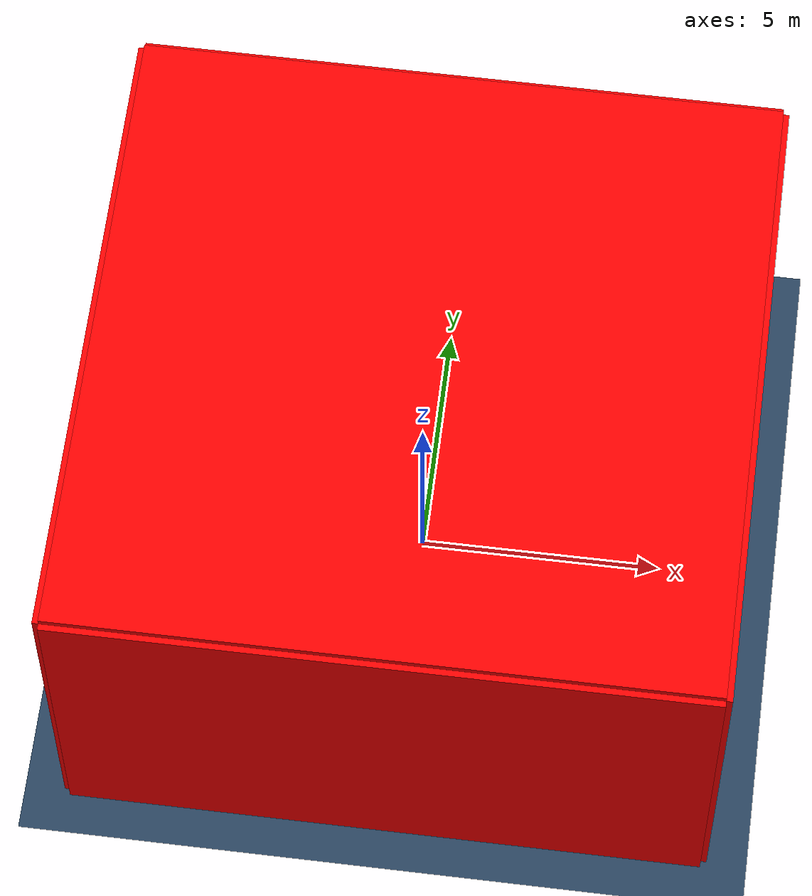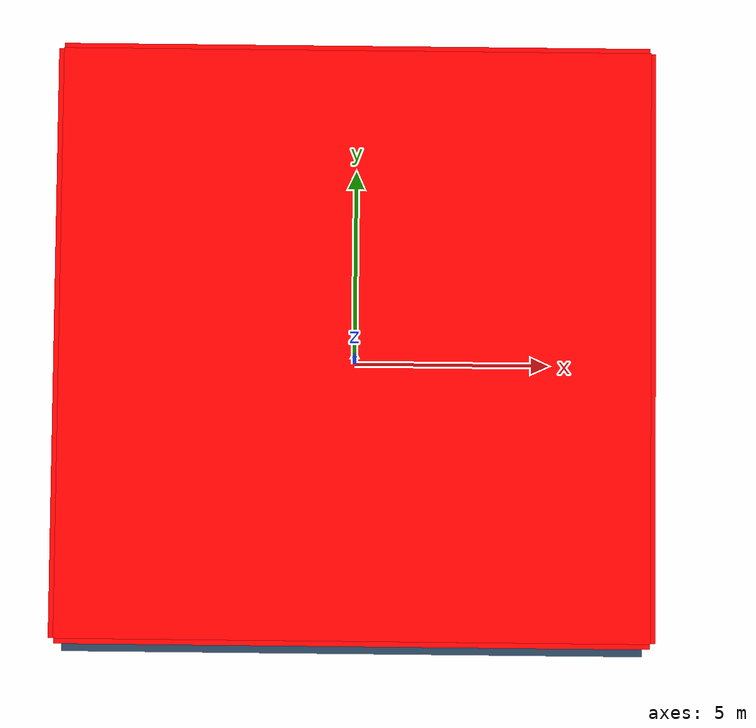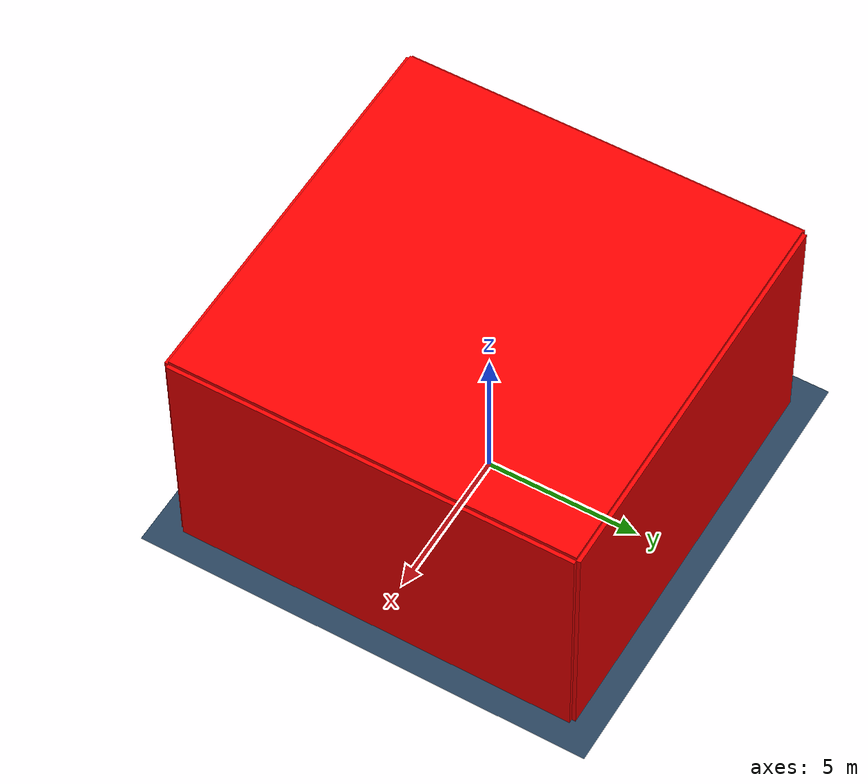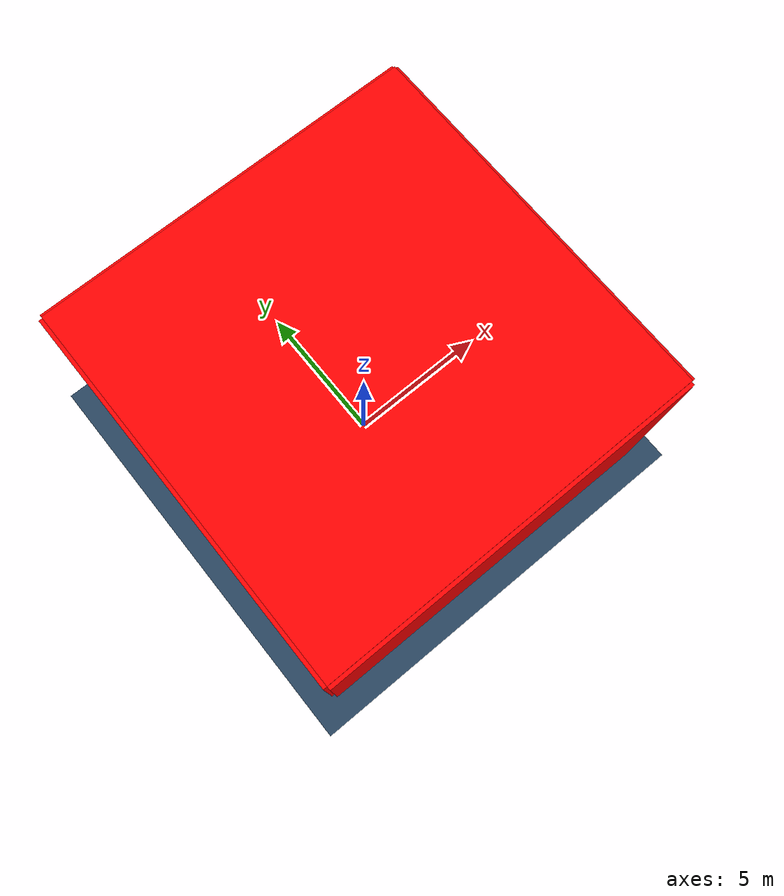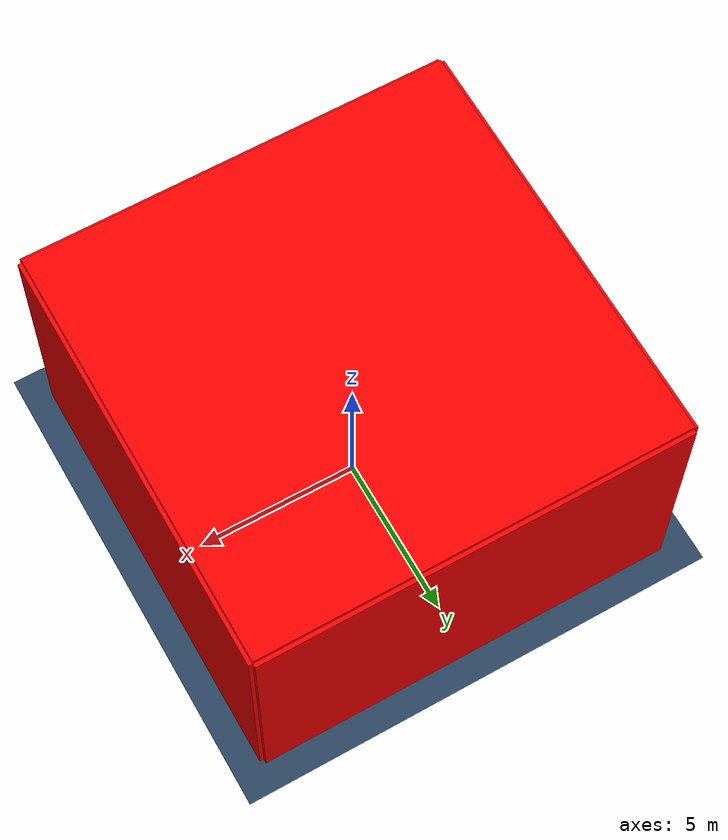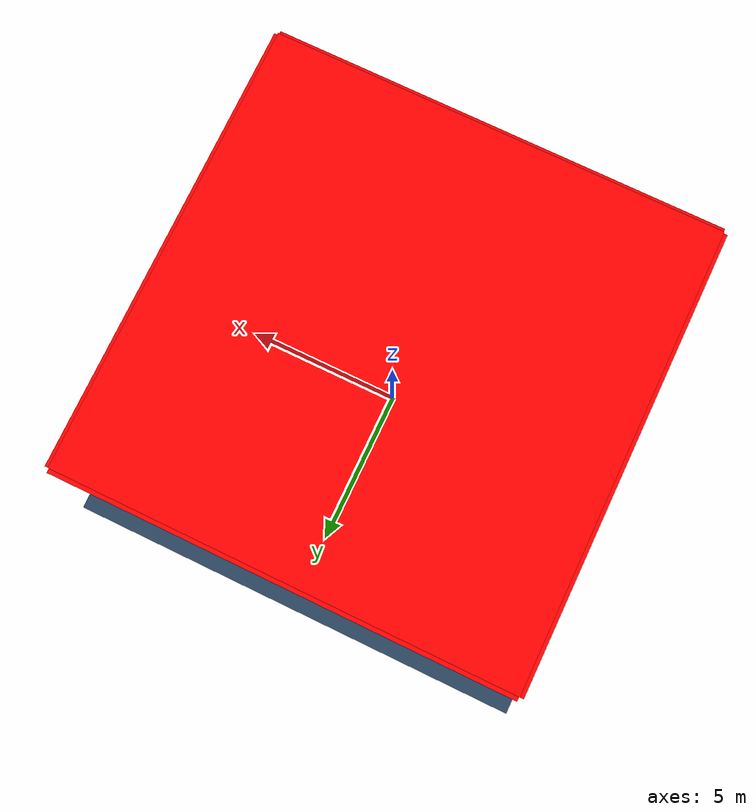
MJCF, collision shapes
<mujoco model="Skydio X2 scene">
  <include file="x2.xml"/>

  <statistic center="0 0 0.1" extent="0.6" meansize=".05"/>

  <visual>
    <headlight diffuse="0.6 0.6 0.6" ambient="0.3 0.3 0.3" specular="0 0 0"/>
    <rgba haze="0.15 0.25 0.35 1"/>
    <global azimuth="-20" elevation="-20" ellipsoidinertia="true"/>
  </visual>

  <asset>
    <texture type="skybox" builtin="gradient" rgb1="0.3 0.5 0.7" rgb2="0 0 0" width="512" height="3072"/>
    <texture type="2d" name="groundplane" builtin="checker" mark="edge" rgb1="0.2 0.3 0.4" rgb2="0.1 0.2 0.3"
      markrgb="0.8 0.8 0.8" width="300" height="300"/>
    <material name="groundplane" texture="groundplane" texuniform="true" texrepeat="5 5" reflectance="0.2"/>
  </asset>

  <worldbody>
    <light pos="0 0 1.5" dir="0 0 -1" directional="true"/>
    <geom name="floor" size="0 0 0.05" type="plane" material="groundplane"/>
    <body name="obstacle_1">
      <geom name="obstacle_1" size=".5 4 1" pos="-2 -2 4" type="cylinder" rgba="1 0 0 .2"/>
    </body>
    <body name="obstacle_2">
      <geom name="obstacle_2" size=".5 4 1" pos="-2 2 4" type="cylinder" rgba="1 0 0 .2"/>
    </body>
    <body name="obstacle_3">
      <geom name="obstacle_3" size=".5 4 1" pos="2 2 4" type="cylinder" rgba="1 0 0 .2"/>
    </body>
    <body name="obstacle_4">
      <geom name="obstacle_4" size=".5 4 1" pos="2 -2 4" type="cylinder" rgba="1 0 0 .2"/>
    </body>
    <body name="obstacle_5">
      <geom name="obstacle_5" size=".5 4 1" pos="6 6 4" type="cylinder" rgba="1 0 0 .2"/>
    </body>
    <body name="obstacle_6">
      <geom name="obstacle_6" size=".5 4 1" pos="6 2 4" type="cylinder" rgba="1 0 0 .2"/>
    </body>
    <body name="obstacle_7">
      <geom name="obstacle_7" size=".5 4 1" pos="6 -2 4" type="cylinder" rgba="1 0 0 .2"/>
    </body>
    <body name="obstacle_8">
      <geom name="obstacle_8" size=".5 4 1" pos="6 -6 4" type="cylinder" rgba="1 0 0 .2"/>
    </body>
    <body name="obstacle_9">
      <geom name="obstacle_9" size=".5 4 1" pos="2 -6 4" type="cylinder" rgba="1 0 0 .2"/>
    </body>
    <body name="obstacle_10">
      <geom name="obstacle_10" size=".5 4 1" pos="2 6 4" type="cylinder" rgba="1 0 0 .2"/>
    </body>
    <body name="obstacle_11">
      <geom name="obstacle_11" size=".5 4 1" pos="-2 -6 4" type="cylinder" rgba="1 0 0 .2"/>
    </body>
    <body name="obstacle_12">
      <geom name="obstacle_12" size=".5 4 1" pos="-2 6 4" type="cylinder" rgba="1 0 0 .2"/>
    </body>
    <body name="obstacle_13">
      <geom name="obstacle_13" size=".5 4 1" pos="-6 -6 4" type="cylinder" rgba="1 0 0 .2"/>
    </body>
    <body name="obstacle_14">
      <geom name="obstacle_14" size=".5 4 1" pos="-6 -2 4" type="cylinder" rgba="1 0 0 .2"/>
    </body>
    <body name="obstacle_15">
      <geom name="obstacle_15" size=".5 4 1" pos="-6 2 4" type="cylinder" rgba="1 0 0 .2"/>
    </body>
    <body name="obstacle_16">
      <geom name="obstacle_16" size=".5 4 1" pos="-6 6 4" type="cylinder" rgba="1 0 0 .2"/>
    </body>
    <body name="obstacle_upper">
        <geom name="obstacle_upper" type="box" pos="0 6.5 4" size="6.5 0.125 4" rgba="1.0 0.0 0.0 .2"/>
    </body>
    <body name="obstacle_lower">
        <geom name="obstacle_lower" type="box" pos="0 -6.5 4" size="6.5 0.125 4" rgba="1.0 0.0 0.0 .2"/>
    </body>
    <body name="obstacle_right">
        <geom name="obstacle_right" type="box" pos="6.5 0 4" size="0.125 6.5 4" rgba="1.0 0.0 0.0 .2"/>
    </body>
    <body name="obstacle_left">
        <geom name="obstacle_left" type="box" pos="-6.5 0 4" size="0.125 6.5 4" rgba="1.0 0.0 0.0 .2"/>
    </body>
    <body name="obstacle_top">
        <geom name="obstacle_top" type="box" pos="0 0 8" size="6.5 6.5 0.125" rgba="1.0 0.0 0.0 .2"/>
    </body>
    <site name="green_sphere" pos="5 5 7" size="0.5" rgba="0 1 0 0.25" />
  </worldbody>
</mujoco>

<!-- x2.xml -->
<mujoco model="Skydio X2">
  <compiler autolimits="true"/>

  <option timestep="0.01" density="1.225" viscosity="1.8e-5"/>

  <default>
    <default class="x2">
      <geom mass="0"/>
      <motor ctrlrange="0 5"/>
      <mesh scale="0.01 0.01 0.01"/>
      <default class="visual">
        <geom group="2" type="mesh" contype="0" conaffinity="0"/>
      </default>
      <default class="collision">
        <geom group="3" type="box"/>
        <default class="rotor">
          <geom type="ellipsoid" size=".13 .13 .01"/>
        </default>
      </default>
      <site group="5"/>
    </default>
  </default>

  <asset>
    <texture type="2d" file="X2_lowpoly_texture_SpinningProps_1024.png"/>
    <material name="phong3SG" texture="X2_lowpoly_texture_SpinningProps_1024"/>
    <material name="invisible" rgba="0 0 0 0"/>
    <mesh class="x2" file="X2_lowpoly.obj"/>
  </asset>

  <worldbody>
    <light name="spotlight" mode="targetbodycom" target="x2" pos="0 -1 2"/>
    <body name="x2" pos="0 0 0.1" childclass="x2">
      <freejoint/>
      <camera name="track" pos="-5 -5 .5" xyaxes="0 -1 0 1 0 2" mode="trackcom"/>
      <site name="imu" pos="0 0 .02"/>
      <geom material="phong3SG" mesh="X2_lowpoly" class="visual" quat="0 0 1 1"/>
      <geom class="collision" size=".06 .027 .02" pos=".04 0 .02"/>
      <geom class="collision" size=".06 .027 .02" pos=".04 0 .06"/>
      <geom class="collision" size=".05 .027 .02" pos="-.07 0 .065"/>
      <geom class="collision" size=".023 .017 .01" pos="-.137 .008 .065" quat="1 0 0 1"/>
      <geom name="rotor1" class="rotor" pos="-.14 -.18 .05" mass=".25"/>
      <geom name="rotor2" class="rotor" pos="-.14 .18 .05" mass=".25"/>
      <geom name="rotor3" class="rotor" pos=".14 .18 .08" mass=".25"/>
      <geom name="rotor4" class="rotor" pos=".14 -.18 .08" mass=".25"/>
      <geom size=".16 .04 .02" pos="0 0 0.02" type="ellipsoid" mass=".325" class="visual" material="invisible"/>
      <site name="thrust1" pos="-.14 -.18 .05"/>
      <site name="thrust2" pos="-.14 .18 .05"/>
      <site name="thrust3" pos=".14 .18 .08"/>
      <site name="thrust4" pos=".14 -.18 .08"/>
    </body>
  </worldbody>

  <actuator>
    <motor class="x2" name="thrust1" site="thrust1" gear="0 0 1 0 0 -.0201"/>
    <motor class="x2" name="thrust2" site="thrust2" gear="0 0 1 0 0  .0201"/>
    <motor class="x2" name="thrust3" site="thrust3" gear="0 0 1 0 0  .0201"/>
    <motor class="x2" name="thrust4" site="thrust4" gear="0 0 1 0 0 -.0201"/>
  </actuator>

  <keyframe>
    <key name="hover" qpos="0 0 .3 1 0 0 0" ctrl="3.2495625 3.2495625 3.2495625 3.2495625"/>
  </keyframe>

  <sensor>
    <gyro name="body_gyro" site="imu"/>
    <accelerometer name="body_linacc" site="imu"/>
    <framequat name="body_quat" objtype="site" objname="imu"/>
  </sensor>
</mujoco>
